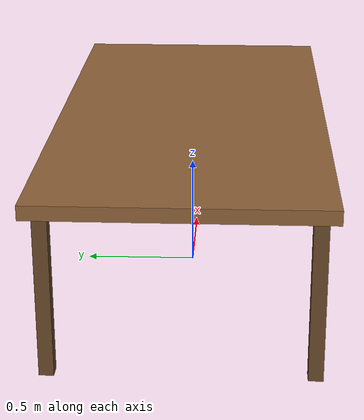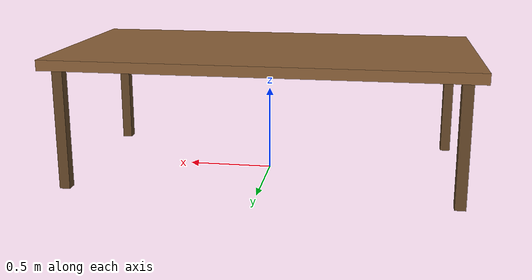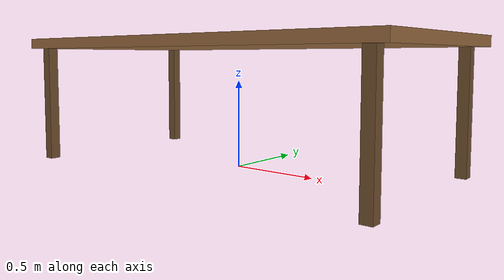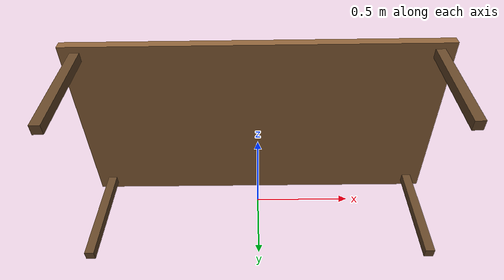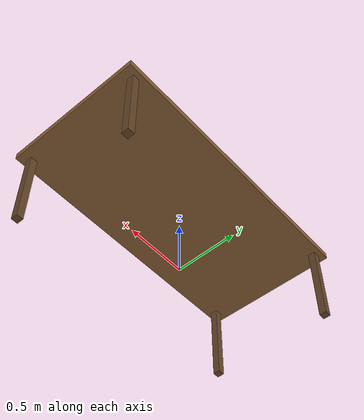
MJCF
<mujoco model="table">
  <option integrator="implicitfast" timestep="0.005" gravity="0 0 -9.81"/>
  <size memory="1000M" nuser_site="6"/>
  <compiler coordinate="local"/>

  <default>
    <default class="table_top">
      <geom type="box" contype="1" conaffinity="1" density="600"
            rgba="0.55 0.38 0.22 1"
            solimp="0.9 0.95 0.001" friction="0.8 0.005 0.0001"
            solref="0.02 1" priority="0" margin="0" condim="3" group="0"/>
    </default>
    <default class="table_leg">
      <geom type="box" contype="1" conaffinity="1" density="600"
            rgba="0.40 0.28 0.16 1"
            solimp="0.9 0.95 0.001" friction="0.8 0.005 0.0001"
            solref="0.02 1" priority="0" margin="0" condim="3" group="0"/>
    </default>
  </default>

  <worldbody>
    <light cutoff="30" pos="0 1 1" dir="0 -1 -2"/>
    <light cutoff="30" pos="0 -1 1" dir="0 1 -2"/>

    <body name="table" pos="0 0 0">

      <!-- ====== Tabletop (2.4 x 1.2 x 0.06), top at z=0.75 ====== -->
      <geom class="table_top" pos="0 0 0.72"
            size="1.2 0.6 0.03" name="table_top"/>

      <!-- ====== 4 Legs (0.06 x 0.06 x 0.69), bottom at z=0 ====== -->
      <!-- Front-Left -->
      <geom class="table_leg" pos="-1.1 -0.53 0.345"
            size="0.03 0.03 0.345" name="leg_fl"/>
      <!-- Front-Right -->
      <geom class="table_leg" pos="1.1 -0.53 0.345"
            size="0.03 0.03 0.345" name="leg_fr"/>
      <!-- Back-Left -->
      <geom class="table_leg" pos="-1.1 0.53 0.345"
            size="0.03 0.03 0.345" name="leg_bl"/>
      <!-- Back-Right -->
      <geom class="table_leg" pos="1.1 0.53 0.345"
            size="0.03 0.03 0.345" name="leg_br"/>

    </body>
  </worldbody>

  <tendon/>
  <actuator/>
  <contact/>
  <equality/>
  <asset/>
</mujoco>
